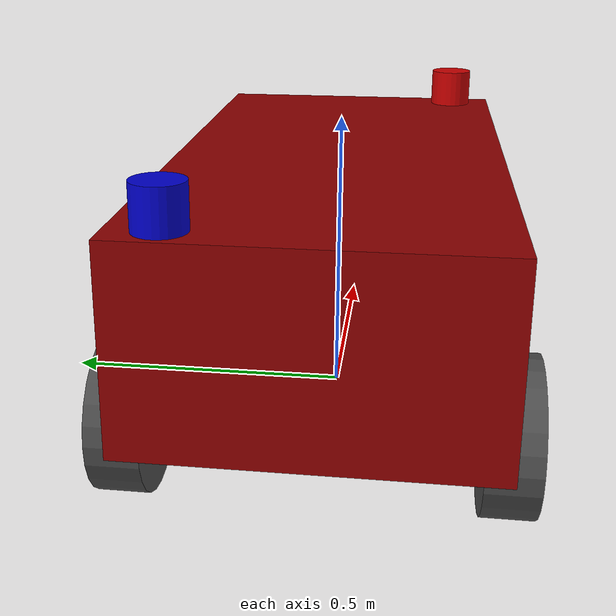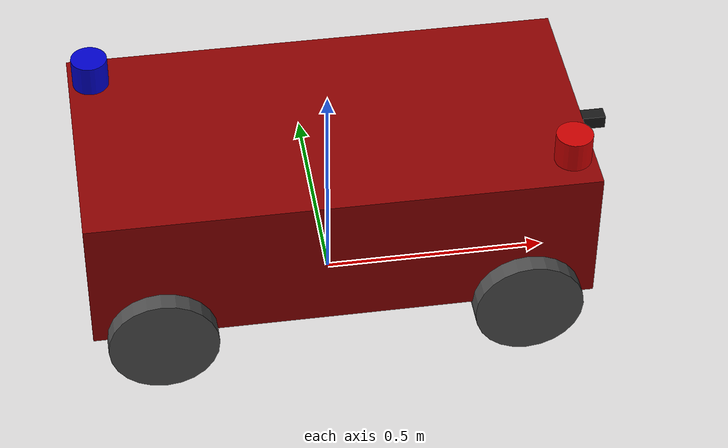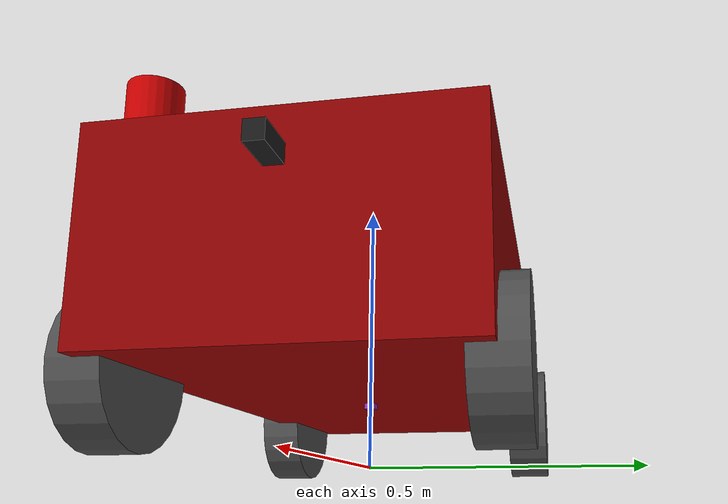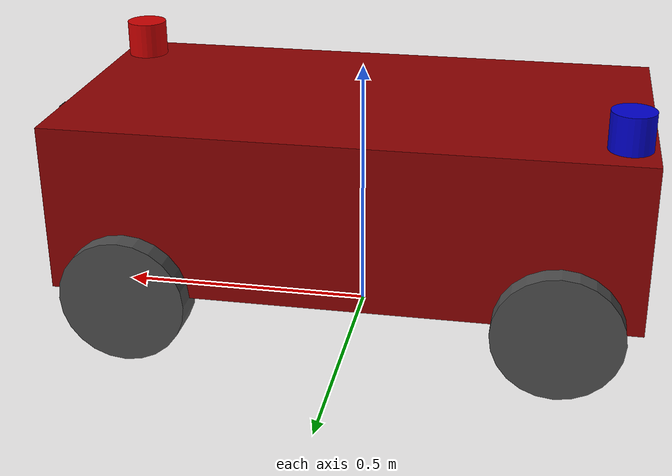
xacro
<?xml version="1.0"?>
<robot name="jzAckermannRobot" xmlns:xacro="http://www.ros.org/wiki/xacro">

    <!-- 参数：是否包含 Gazebo 仿真内容，默认 1（仿真），真机设为 0 -->
    <xacro:arg name="use_gazebo" default="1" />
    <xacro:property name="use_gazebo" value="$(arg use_gazebo)" />

    <!-- 包含所有宏文件 -->
    <xacro:include filename="jz_ackermann_materials.xacro" />
    <xacro:include filename="jz_ackermann_body.xacro" />
    <xacro:include filename="jz_ackermann_wheels.xacro" />
    <xacro:include filename="jz_ackermann_sensors.xacro" />
    <xacro:include filename="jz_ackermann_gazebo_friction.xacro" />
    <xacro:include filename="jz_ackermann_ros2_control.xacro" />

    <!-- ========== 构建机器人 ========== -->
    <!-- 基础车身 -->
    <xacro:base_body use_gazebo="${use_gazebo}" />

    <!-- 传感器 -->
    <xacro:laser_sensor parent_link="base_link" use_gazebo="${use_gazebo}" />
    <xacro:camera_sensor parent_link="base_link" use_gazebo="${use_gazebo}" />
    <xacro:imu_sensor parent_link="base_link" use_gazebo="${use_gazebo}" />

    <!-- 后轮（驱动轮） -->
    <xacro:wheel_link name="left_rear" />
    <xacro:wheel_link name="right_rear" />
    <xacro:wheel_joint name="left_rear" parent="base_link" origin_xyz="-0.40 0.28 0"
        axis_xyz="0 1 0" />
    <xacro:wheel_joint name="right_rear" parent="base_link" origin_xyz="-0.40 -0.28 0"
        axis_xyz="0 1 0" />

    <!-- 前转向节 -->
    <xacro:steer_link name="front_left" />
    <xacro:steer_link name="front_right" />

    <!-- 转向关节 -->
    <joint name="front_left_steer_joint" type="revolute">
        <parent link="base_link" />
        <child link="front_left_steer_link" />
        <origin xyz="0.40 0.28 0" rpy="0 0 0" />
        <axis xyz="0 0 1" />
        <limit lower="-0.523598" upper="0.523598" effort="100" velocity="3.0" />
        <dynamics damping="0.05" friction="0.01" />
    </joint>
    <joint name="front_right_steer_joint" type="revolute">
        <parent link="base_link" />
        <child link="front_right_steer_link" />
        <origin xyz="0.40 -0.28 0" rpy="0 0 0" />
        <axis xyz="0 0 1" />
        <limit lower="-0.523598" upper="0.523598" effort="100" velocity="3.0" />
        <dynamics damping="0.05" friction="0.01" />
    </joint>

    <!-- 前轮 -->
    <xacro:wheel_link name="left_front" />
    <xacro:wheel_link name="right_front" />
    <xacro:wheel_joint name="left_front" parent="front_left_steer_link" type="continuous"
        origin_xyz="0 0 0" axis_xyz="0 1 0" />
    <xacro:wheel_joint name="right_front" parent="front_right_steer_link" type="continuous"
        origin_xyz="0 0 0" axis_xyz="0 1 0" />

    <!-- Gazebo 摩擦配置（仅仿真） -->
    <xacro:if value="${use_gazebo == 1}">
        <xacro:wheel_friction name="left_rear" mu1="10.0" mu2="10.0" />
        <xacro:wheel_friction name="right_rear" mu1="10.0" mu2="10.0" />
        <xacro:wheel_friction name="left_front" mu1="10.0" mu2="0.5" />
        <xacro:wheel_friction name="right_front" mu1="10.0" mu2="0.5" />

        <!-- 物理引擎设置 -->
        <gazebo>
            <physics type="ode">
                <max_step_size>0.001</max_step_size>
                <real_time_factor>1.0</real_time_factor>
                <real_time_update_rate>1000</real_time_update_rate>
            </physics>
        </gazebo>

        <!-- ros2_control（仿真用） -->
        <xacro:ackermann_ros2_control
            controller_config_path="$(find jzt_robot)/config/ackermann_controllers.yaml" />
    </xacro:if>

</robot>

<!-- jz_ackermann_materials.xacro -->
<robot xmlns:xacro="http://www.ros.org/wiki/xacro">
    <material name="dark_red">
        <color rgba="0.55 0.0 0.0 1.0" />
    </material>
    <material name="red">
        <color rgba="0.8 0.0 0.0 1.0" />
    </material>
    <material name="blue">
        <color rgba="0.0 0.0 0.8 1.0" />
    </material>
    <material name="purple">
        <color rgba="0.5 0.0 0.5 1.0" />
    </material>
    <material name="black">
        <color rgba="0.1 0.1 0.1 1.0" />
    </material>
    <material name="dark_grey">
        <color rgba="0.3 0.3 0.3 1.0" />
    </material>
    <material name="grey">
        <color rgba="0.7 0.7 0.7 1.0" />
    </material>
</robot>

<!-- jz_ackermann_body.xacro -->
<robot xmlns:xacro="http://www.ros.org/wiki/xacro">

    <xacro:macro name="base_body" params="use_gazebo:=1">
        <link name="base_footprint" />

        <joint name="base_joint" type="fixed">
            <parent link="base_footprint" />
            <child link="base_link" />
            <origin xyz="0.0 0.0 0.12" rpy="0 0 0" />
        </joint>

        <link name="base_link">
            <visual>
                <origin xyz="0 0 0.16" rpy="0 0 0" />
                <geometry>
                    <box size="1.1 0.56 0.32" />
                </geometry>
                <material name="dark_red" />
            </visual>
            <collision>
                <origin xyz="0 0 0.16" rpy="0 0 0" />
                <geometry>
                    <box size="1.1 0.56 0.32" />
                </geometry>
            </collision>
            <inertial>
                <mass value="15.0" />
                <inertia ixx="0.45" ixy="0" ixz="0" iyy="1.25" iyz="0" izz="1.55" />
            </inertial>
        </link>

        <xacro:if value="${use_gazebo == 1}">
            <gazebo reference="base_link">
                <material>Gazebo/Red</material>
            </gazebo>
        </xacro:if>
    </xacro:macro>
</robot>

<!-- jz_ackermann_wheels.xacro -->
<robot xmlns:xacro="http://www.ros.org/wiki/xacro">

    <!-- 普通驱动轮（后轮）宏 -->
    <xacro:macro name="wheel_link" params="name prefix:=wheel">
        <link name="${name}_wheel_link">
            <visual>
                <origin xyz="0 0 0" rpy="1.57079 0 0" />
                <geometry>
                    <cylinder length="0.08" radius="0.12" />
                </geometry>
                <material name="dark_grey" />
            </visual>
            <collision>
                <origin xyz="0 0 0" rpy="1.57079 0 0" />
                <geometry>
                    <cylinder length="0.08" radius="0.12" />
                </geometry>
            </collision>
            <inertial>
                <mass value="1.5" />
                <inertia ixx="0.003" ixy="0" ixz="0" iyy="0.003" iyz="0" izz="0.0054" />
            </inertial>
        </link>
    </xacro:macro>

    <!-- 转向节连杆 -->
    <xacro:macro name="steer_link" params="name">
        <link name="${name}_steer_link">
            <visual>
                <origin xyz="0 0 0" rpy="0 0 0" />
                <geometry>
                    <box size="0.04 0.03 0.03" />
                </geometry>
                <material name="grey" />
            </visual>
            <collision>
                <origin xyz="0 0 0" rpy="0 0 0" />
                <geometry>
                    <box size="0.001 0.001 0.001" />
                </geometry>
            </collision>
            <inertial>
                <mass value="0.5" />
                <inertia ixx="0.001" ixy="0" ixz="0" iyy="0.001" iyz="0" izz="0.001" />
            </inertial>
        </link>
    </xacro:macro>

    <!-- 车轮关节宏 -->
    <xacro:macro name="wheel_joint" params="name parent type:=continuous origin_xyz axis_xyz">
        <joint name="${name}_wheel_joint" type="${type}">
            <parent link="${parent}" />
            <child link="${name}_wheel_link" />
            <origin xyz="${origin_xyz}" rpy="0 0 0" />
            <axis xyz="${axis_xyz}" />
            <limit effort="100" velocity="3.0" lower="-1e16" upper="1e16" />  <!-- continuous
            不需要limit，但保留通用 -->
        </joint>
    </xacro:macro>

</robot>

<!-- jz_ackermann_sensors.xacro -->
<robot xmlns:xacro="http://www.ros.org/wiki/xacro">

    <!-- ==================== 双激光雷达 ==================== -->
    <xacro:macro name="laser_sensor" params="parent_link use_gazebo:=1">
        <!-- 前向雷达（右前方） -->
        <link name="laser_front_link">
            <visual>
                <origin xyz="0 0 0" rpy="0 0 0" />
                <geometry>
                    <cylinder length="0.08" radius="0.04" />
                </geometry>
                <material name="red" />
            </visual>
            <collision>
                <origin xyz="0 0 0" rpy="0 0 0" />
                <geometry>
                    <cylinder length="0.08" radius="0.04" />
                </geometry>
            </collision>
            <inertial>
                <mass value="0.3" />
                <inertia ixx="0.0002" ixy="0" ixz="0" iyy="0.0002" iyz="0" izz="0.00024" />
            </inertial>
        </link>
        <joint name="laser_front_joint" type="fixed">
            <parent link="${parent_link}" />
            <child link="laser_front_link" />
            <origin xyz="0.50 -0.20 0.35" rpy="0 0 -0.785398" />
        </joint>

        <!-- 后向雷达（左后方） -->
        <link name="laser_rear_link">
            <visual>
                <origin xyz="0 0 0" rpy="0 0 0" />
                <geometry>
                    <cylinder length="0.08" radius="0.04" />
                </geometry>
                <material name="blue" />
            </visual>
            <collision>
                <origin xyz="0 0 0" rpy="0 0 0" />
                <geometry>
                    <cylinder length="0.08" radius="0.04" />
                </geometry>
            </collision>
            <inertial>
                <mass value="0.3" />
                <inertia ixx="0.0002" ixy="0" ixz="0" iyy="0.0002" iyz="0" izz="0.00024" />
            </inertial>
        </link>
        <joint name="laser_rear_joint" type="fixed">
            <parent link="${parent_link}" />
            <child link="laser_rear_link" />
            <origin xyz="-0.50 0.20 0.35" rpy="0 0 2.35619" />
        </joint>

        <xacro:if value="${use_gazebo == 1}">
            <!-- ==================== 前向雷达 Gazebo 插件 ==================== -->
            <gazebo reference="laser_front_link">
                <material>Gazebo/Red</material>
                <sensor name="laser_front_sensor" type="ray">
                    <always_on>true</always_on>
                    <visualize>true</visualize>
                    <update_rate>25</update_rate>
                    <pose>0 0 0 0 0 0</pose>
                    <ray>
                        <scan>
                            <horizontal>
                                <samples>540</samples>
                                <resolution>1.0</resolution>
                                <time_increment>0.000074</time_increment>
                                <min_angle>-2.35619</min_angle>
                                <max_angle>2.35619</max_angle>
                            </horizontal>
                        </scan>
                        <range>
                            <min>0.15</min>
                            <max>45.0</max>
                            <resolution>0.01</resolution>
                        </range>
                        <noise>
                            <type>gaussian</type>
                            <mean>0.0</mean>
                            <stddev>0.02</stddev>
                        </noise>
                    </ray>
                    <plugin name="gazebo_ros_laser_front" filename="libgazebo_ros_ray_sensor.so">
                        <ros>
                            <namespace>/</namespace>
                            <remapping>~/out:=scan_front</remapping>
                        </ros>
                        <topicName>scan_front</topicName>
                        <frame_name>laser_front_link</frame_name>
                        <output_type>sensor_msgs/LaserScan</output_type>
                        <min_range>0.15</min_range>
                        <max_range>45.0</max_range>
                        <angle_min>-2.35619</angle_min>
                        <angle_max>2.35619</angle_max>
                        <scan_time>0.04</scan_time>
                    </plugin>
                </sensor>
            </gazebo>

            <!-- ==================== 后向雷达 Gazebo 插件 ==================== -->
            <gazebo reference="laser_rear_link">
                <material>Gazebo/Blue</material>
                <sensor name="laser_rear_sensor" type="ray">
                    <always_on>true</always_on>
                    <visualize>true</visualize>
                    <update_rate>25</update_rate>
                    <pose>0 0 0 0 0 0</pose>
                    <ray>
                        <scan>
                            <horizontal>
                                <samples>540</samples>
                                <resolution>1.0</resolution>
                                <time_increment>0.000074</time_increment>
                                <min_angle>-2.35619</min_angle>
                                <max_angle>2.35619</max_angle>
                            </horizontal>
                        </scan>
                        <range>
                            <min>0.15</min>
                            <max>45.0</max>
                            <resolution>0.01</resolution>
                        </range>
                        <noise>
                            <type>gaussian</type>
                            <mean>0.0</mean>
                            <stddev>0.02</stddev>
                        </noise>
                    </ray>
                    <plugin name="gazebo_ros_laser_rear" filename="libgazebo_ros_ray_sensor.so">
                        <ros>
                            <namespace>/</namespace>
                            <remapping>~/out:=scan_rear</remapping>
                        </ros>
                        <topicName>scan_rear</topicName>
                        <frame_name>laser_rear_link</frame_name>
                        <output_type>sensor_msgs/LaserScan</output_type>
                        <min_range>0.15</min_range>
                        <max_range>45.0</max_range>
                        <angle_min>-2.35619</angle_min>
                        <angle_max>2.35619</angle_max>
                        <scan_time>0.04</scan_time>
                    </plugin>
                </sensor>
            </gazebo>
        </xacro:if>
    </xacro:macro>

    <!-- 摄像头 -->
    <xacro:macro name="camera_sensor" params="parent_link use_gazebo:=1">
        <link name="camera_link">
            <visual>
                <origin xyz="0 0 0" rpy="0 0 0" />
                <geometry>
                    <box size="0.12 0.03 0.03" />
                </geometry>
                <material name="black" />
            </visual>
            <collision>
                <origin xyz="0 0 0" rpy="0 0 0" />
                <geometry>
                    <box size="0.12 0.03 0.03" />
                </geometry>
            </collision>
            <inertial>
                <mass value="0.2" />
                <inertia ixx="0.0001" ixy="0" ixz="0" iyy="0.0002" iyz="0" izz="0.0002" />
            </inertial>
        </link>
        <link name="camera_optical_link" />
        <joint name="camera_joint" type="fixed">
            <parent link="${parent_link}" />
            <child link="camera_link" />
            <origin xyz="0.56 0 0.25" rpy="0 0 0" />
        </joint>
        <joint name="camera_optical_joint" type="fixed">
            <parent link="camera_link" />
            <child link="camera_optical_link" />
            <origin xyz="0.06 0 0" rpy="-1.570796 0 -1.570796" />
        </joint>

        <xacro:if value="${use_gazebo == 1}">
            <gazebo reference="camera_link">
                <material>Gazebo/Black</material>
                <sensor name="camera_sensor" type="camera">
                    <camera>
                        <horizontal_fov>1.047</horizontal_fov>
                        <image>
                            <width>640</width>
                            <height>480</height>
                            <format>R8G8B8</format>
                        </image>
                        <clip>
                            <near>0.1</near>
                            <far>100</far>
                        </clip>
                    </camera>
                    <always_on>true</always_on>
                    <update_rate>30</update_rate>
                    <visualize>true</visualize>
                    <plugin name="camera_plugin" filename="libgazebo_ros_camera.so">
                        <ros>
                            <remapping>~/image:=camera/image_raw</remapping>
                            <remapping>~/camera_info:=camera/camera_info</remapping>
                        </ros>
                        <camera_name>camera</camera_name>
                        <frame_name>camera_optical_link</frame_name>
                        <hack_baseline>0.07</hack_baseline>
                    </plugin>
                </sensor>
            </gazebo>
        </xacro:if>
    </xacro:macro>

    <!-- IMU -->
    <xacro:macro name="imu_sensor" params="parent_link use_gazebo:=1">
        <link name="imu_link">
            <visual>
                <geometry>
                    <box size="0.02 0.02 0.02" />
                </geometry>
            </visual>
            <collision>
                <geometry>
                    <box size="0.02 0.02 0.02" />
                </geometry>
            </collision>
            <inertial>
                <mass value="0.1" />
                <inertia ixx="0.000003" ixy="0" ixz="0" iyy="0.000003" iyz="0" izz="0.000003" />
            </inertial>
        </link>
        <joint name="imu_joint" type="fixed">
            <origin xyz="0 0 0" rpy="0 0 0" />
            <parent link="${parent_link}" />
            <child link="imu_link" />
        </joint>

        <xacro:if value="${use_gazebo == 1}">
            <gazebo reference="imu_link">
                <material>Gazebo/Purple</material>
                <sensor name="imu_sensor" type="imu">
                    <plugin filename="libgazebo_ros_imu_sensor.so" name="imu_plugin">
                        <ros>
                            <remapping>~/out:=imu</remapping>
                        </ros>
                        <initial_orientation_as_reference>false</initial_orientation_as_reference>
                        <frame_name>imu_link</frame_name>
                    </plugin>
                    <always_on>true</always_on>
                    <update_rate>100</update_rate>
                    <visualize>true</visualize>
                    <imu>
                        <angular_velocity>
                            <x>
                                <noise type="gaussian">
                                    <mean>0.0</mean>
                                    <stddev>2e-4</stddev>
                                    <bias_mean>0.0000075</bias_mean>
                                    <bias_stddev>0.0000008</bias_stddev>
                                </noise>
                            </x>
                            <y>
                                <noise type="gaussian">
                                    <mean>0.0</mean>
                                    <stddev>2e-4</stddev>
                                    <bias_mean>0.0000075</bias_mean>
                                    <bias_stddev>0.0000008</bias_stddev>
                                </noise>
                            </y>
                            <z>
                                <noise type="gaussian">
                                    <mean>0.0</mean>
                                    <stddev>2e-4</stddev>
                                    <bias_mean>0.0000075</bias_mean>
                                    <bias_stddev>0.0000008</bias_stddev>
                                </noise>
                            </z>
                        </angular_velocity>
                        <linear_acceleration>
                            <x>
                                <noise type="gaussian">
                                    <mean>0.0</mean>
                                    <stddev>1.7e-2</stddev>
                                    <bias_mean>0.1</bias_mean>
                                    <bias_stddev>0.001</bias_stddev>
                                </noise>
                            </x>
                            <y>
                                <noise type="gaussian">
                                    <mean>0.0</mean>
                                    <stddev>1.7e-2</stddev>
                                    <bias_mean>0.1</bias_mean>
                                    <bias_stddev>0.001</bias_stddev>
                                </noise>
                            </y>
                            <z>
                                <noise type="gaussian">
                                    <mean>0.0</mean>
                                    <stddev>1.7e-2</stddev>
                                    <bias_mean>0.1</bias_mean>
                                    <bias_stddev>0.001</bias_stddev>
                                </noise>
                            </z>
                        </linear_acceleration>
                    </imu>
                </sensor>
            </gazebo>
        </xacro:if>
    </xacro:macro>
</robot>
